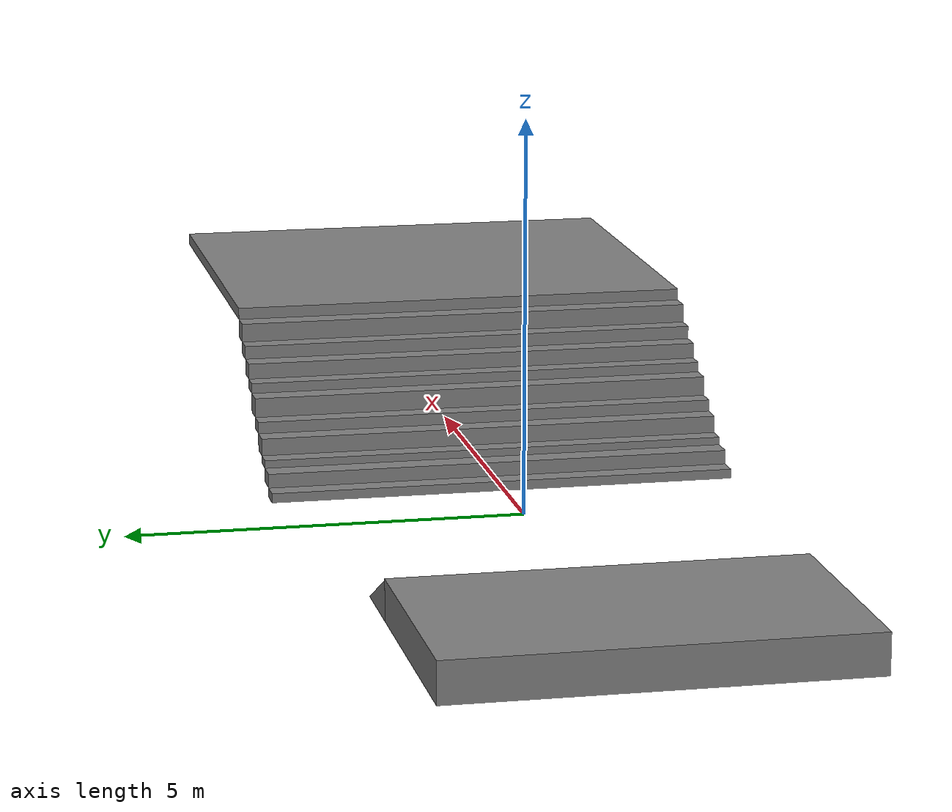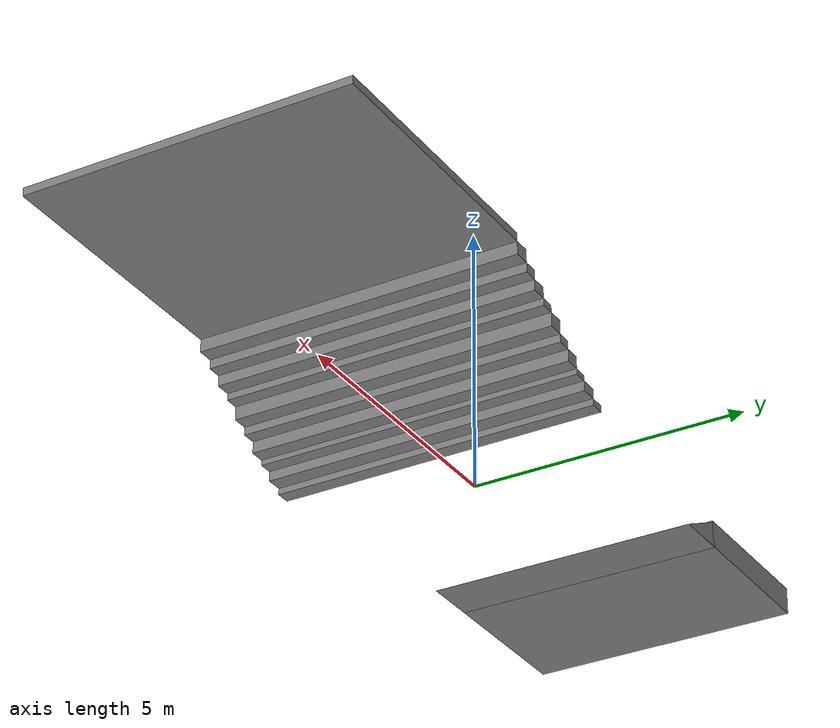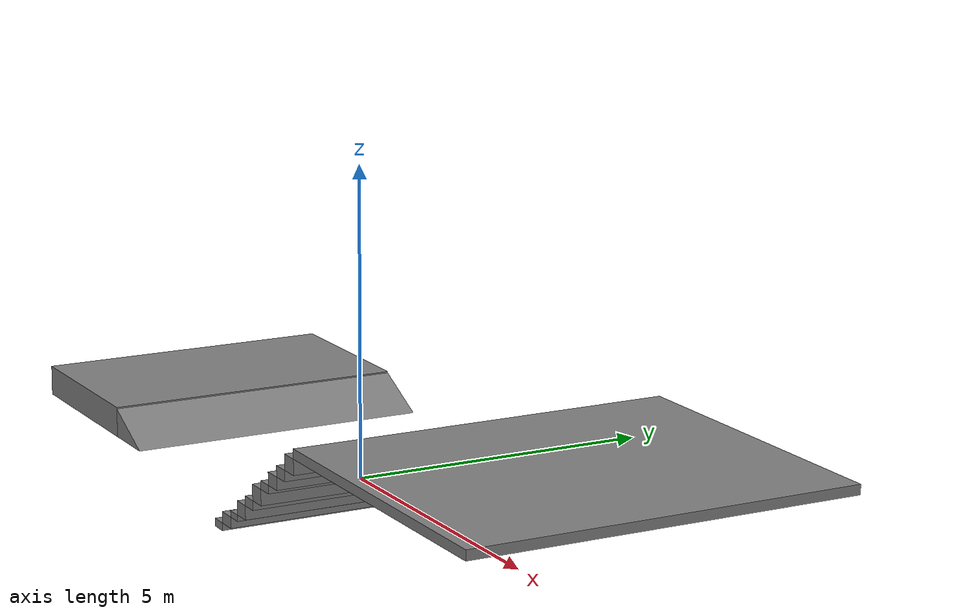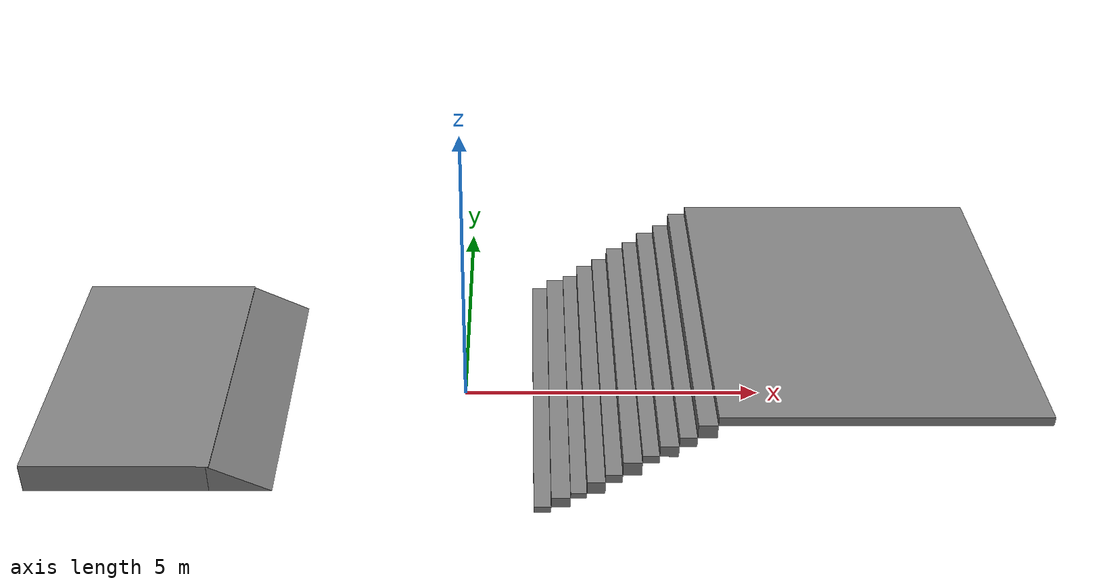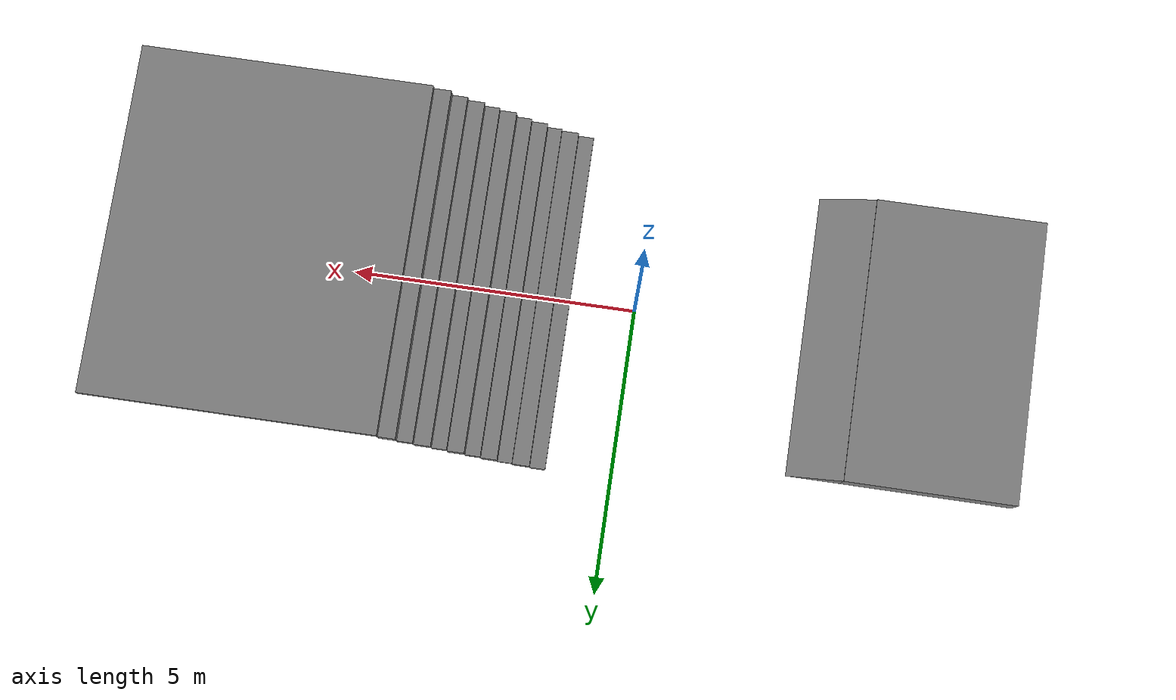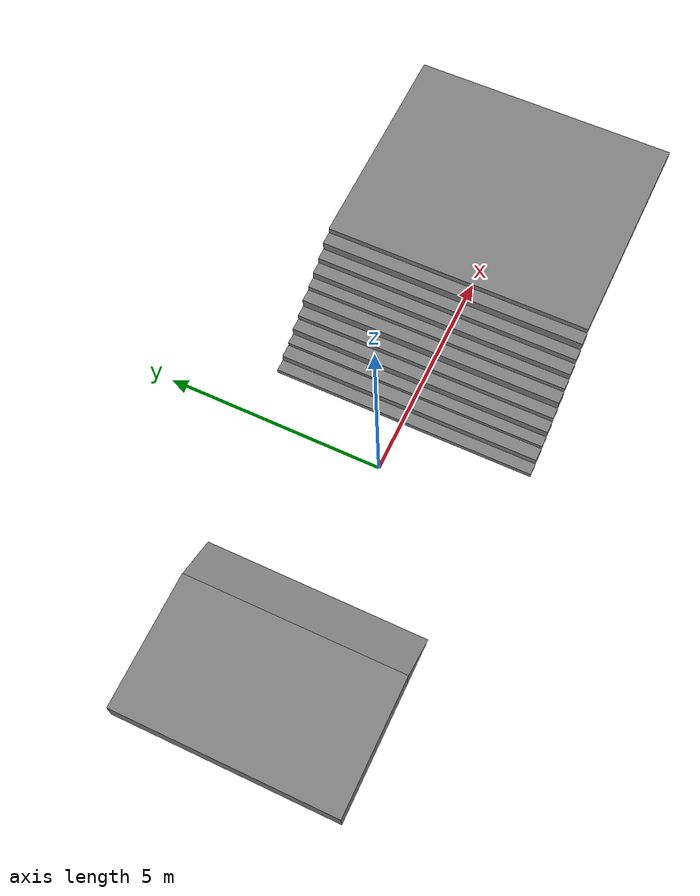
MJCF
<?xml version="1.0" encoding="UTF-8" ?>
<mujoco model="stair_terrain">
    <option gravity="0 0 -9.81" />

    <asset>
        <!-- lang tru tam giac (wedge) lam doc: mat cat tam giac vuong trong mp x-z,     -->
        <!-- keo dai theo y (rong 5m). Canh thap (z=-0.25) o x=+0.5 (phia robot toi),    -->
        <!-- canh cao (z=+0.25) o x=-0.5 (phia noi voi buc) -> doc len khi x giam.       -->
        <mesh name="ramp_wedge" vertex="
             0.5 -2.5 -0.25   0.5  2.5 -0.25
            -0.5 -2.5 -0.25  -0.5  2.5 -0.25
            -0.5 -2.5  0.25  -0.5  2.5  0.25
        "/>
    </asset>

    <worldbody>

        <!-- khoi de robot leo len: cao 0.5m, sau 3m (huong di), rong 5m (ngang)          -->
        <!-- co doc (ramp) o phia truoc de leo len, dat xa vi tri spawn cua robot (x=0)   -->
        <!-- hon: doc bat dau tu x=-3 (cach spawn 3m), dinh doc noi khit voi mep buc.      -->
        <body name="climb_block" pos="0 0 0">
            <!-- doc dang khoi lang tru (wedge) dac: rise=0.5, run=1.0, goc ~26.565 deg -->
            <geom name="climb_ramp" type="mesh" mesh="ramp_wedge" pos="-3.5 0 0.25" rgba="0.5 0.5 0.5 1"/>
            <!-- buc: sau 3m, rong 5m, cao 0.5m -->
            <geom name="climb_block" type="box" pos="-5.45 0 0.25" size="1.5 2.5 0.25" rgba="0.5 0.5 0.5 1"/>
        </body>

        <!-- stair: 10 bac, moi bac co chieu cao (rise) va chieu rong (run) khac nhau      -->
        <!-- rise in [0.10, 0.25] m, run in [0.25, 0.30] m. Cac bac duoc dat khit nhau:    -->
        <!-- canh sau (x) cua bac truoc = canh truoc cua bac sau, dinh (z) cua bac truoc = -->
        <!-- day cua bac sau -> khong co khe ho ngang hay doc.                             -->
        <body name="staircase" pos="0.8 0 0">
            <!-- bac 1: rise=0.12, run=0.27 -->
            <geom name="stair1"  type="box" pos="0.485  0 0.060" size="0.135 3.0 0.060" rgba="0.5 0.5 0.5 1"/>
            <!-- bac 2: rise=0.18, run=0.30 -->
            <geom name="stair2"  type="box" pos="0.770  0 0.210" size="0.150 3.0 0.090" rgba="0.5 0.5 0.5 1"/>
            <!-- bac 3: rise=0.10, run=0.25 -->
            <geom name="stair3"  type="box" pos="1.045  0 0.350" size="0.125 3.0 0.050" rgba="0.5 0.5 0.5 1"/>
            <!-- bac 4: rise=0.22, run=0.28 -->
            <geom name="stair4"  type="box" pos="1.310  0 0.510" size="0.140 3.0 0.110" rgba="0.5 0.5 0.5 1"/>
            <!-- bac 5: rise=0.15, run=0.26 -->
            <geom name="stair5"  type="box" pos="1.580  0 0.695" size="0.130 3.0 0.075" rgba="0.5 0.5 0.5 1"/>
            <!-- bac 6: rise=0.25, run=0.29 -->
            <geom name="stair6"  type="box" pos="1.855  0 0.895" size="0.145 3.0 0.125" rgba="0.5 0.5 0.5 1"/>
            <!-- bac 7: rise=0.13, run=0.255 -->
            <geom name="stair7"  type="box" pos="2.1275 0 1.085" size="0.1275 3.0 0.065" rgba="0.5 0.5 0.5 1"/>
            <!-- bac 8: rise=0.20, run=0.285 -->
            <geom name="stair8"  type="box" pos="2.3975 0 1.250" size="0.1425 3.0 0.100" rgba="0.5 0.5 0.5 1"/>
            <!-- bac 9: rise=0.17, run=0.265 -->
            <geom name="stair9"  type="box" pos="2.6725 0 1.435" size="0.1325 3.0 0.085" rgba="0.5 0.5 0.5 1"/>
            <!-- bac 10: rise=0.24, run=0.295 -->
            <geom name="stair10" type="box" pos="2.9525 0 1.640" size="0.1475 3.0 0.120" rgba="0.5 0.5 0.5 1"/>
            <!-- san sau bac cuoi (landing), rise=0.15, dai 5m de robot di tiep -->
            <geom name="stair11" type="box" pos="5.600  0 1.835" size="2.500 3.0 0.075" rgba="0.5 0.5 0.5 1"/>
        </body>
    </worldbody>
</mujoco>
